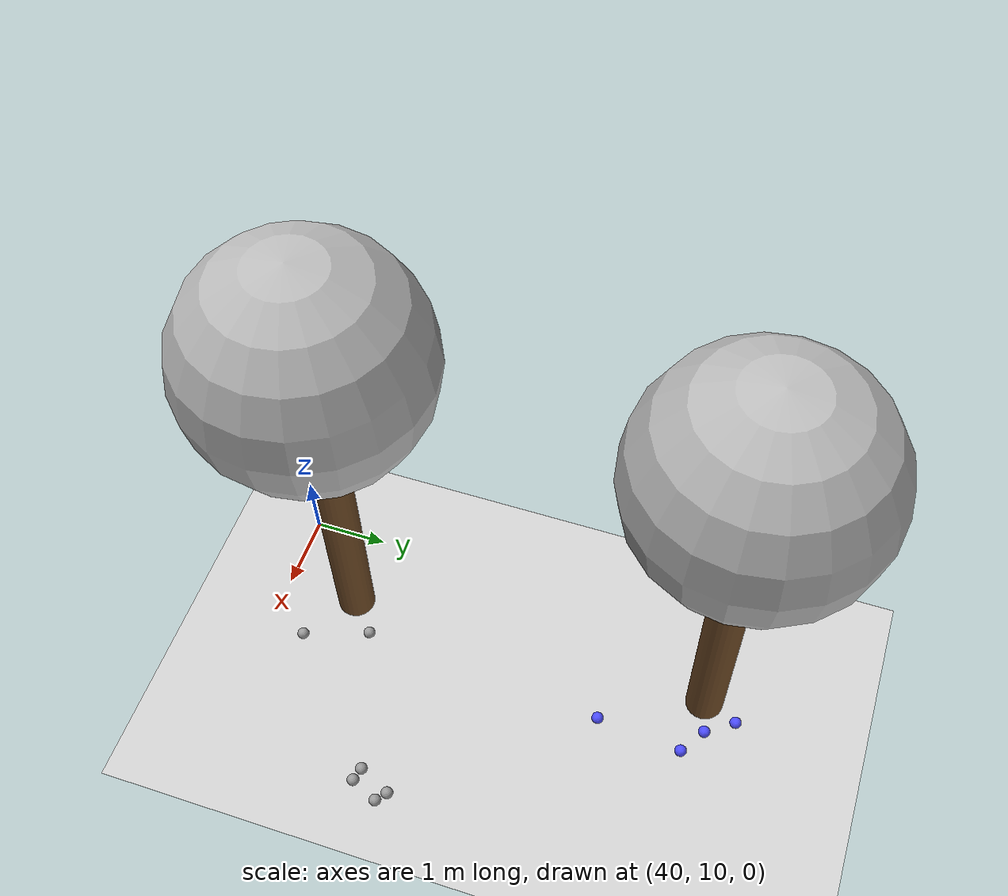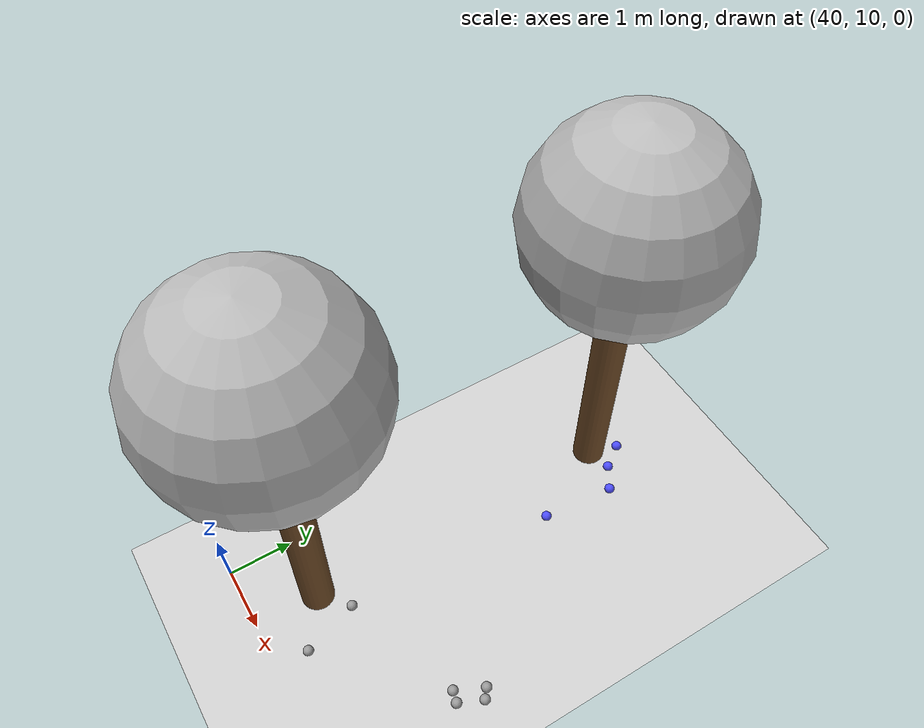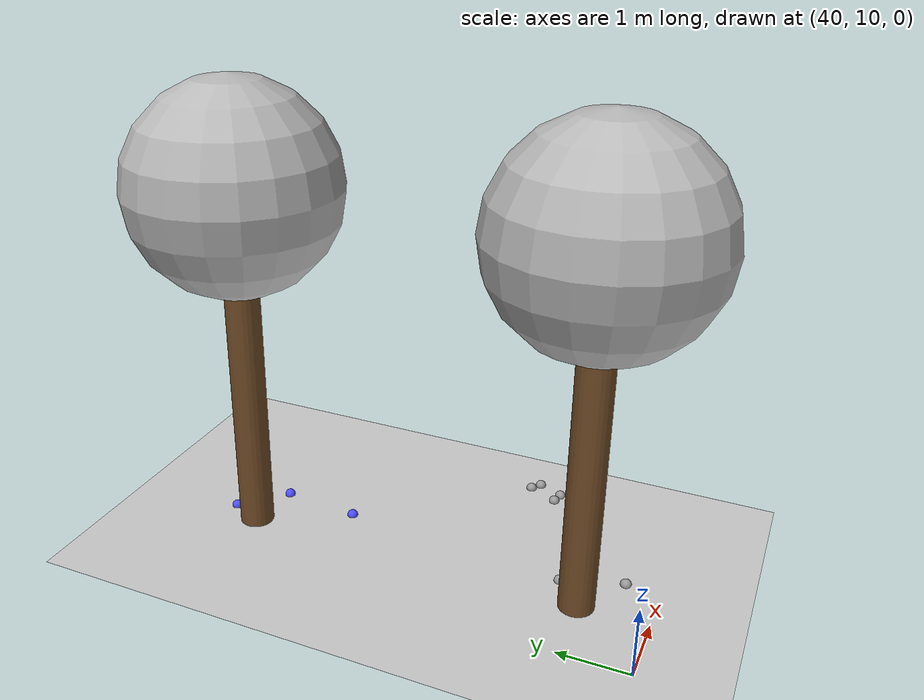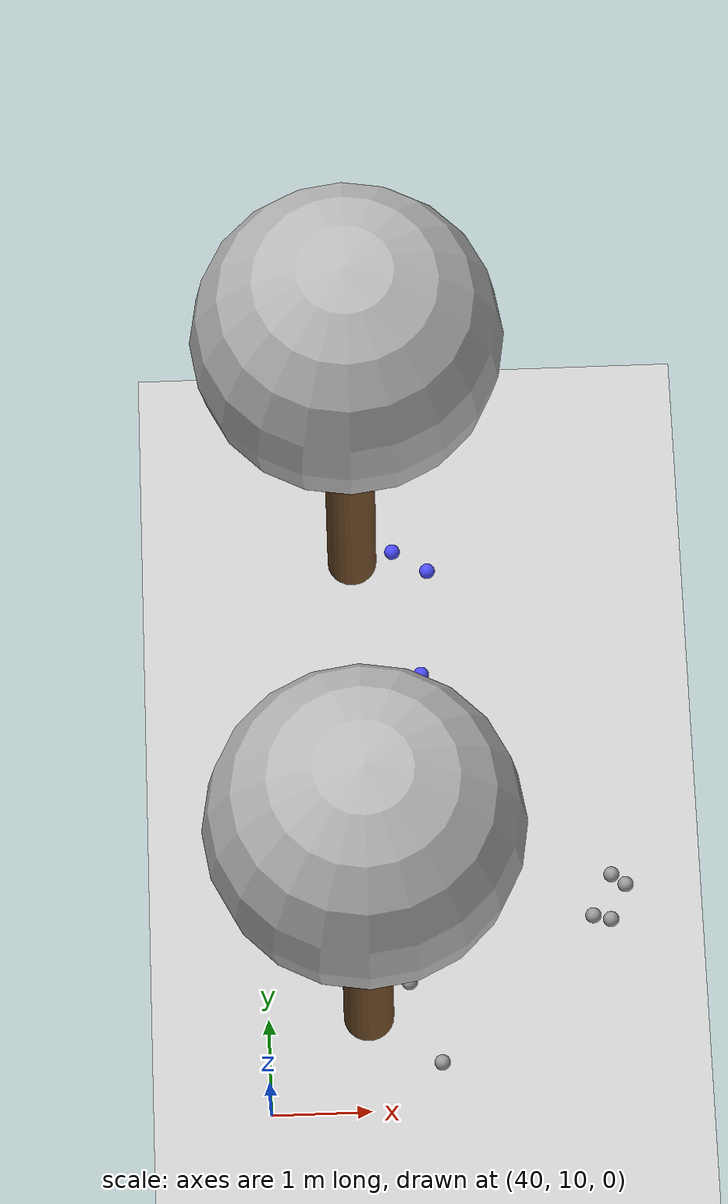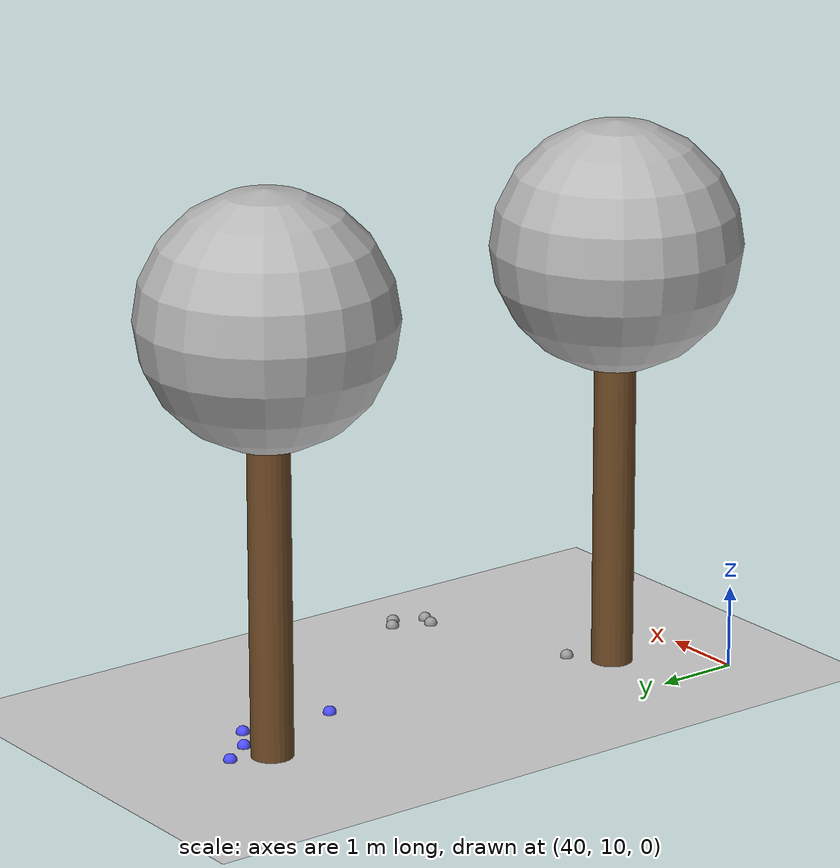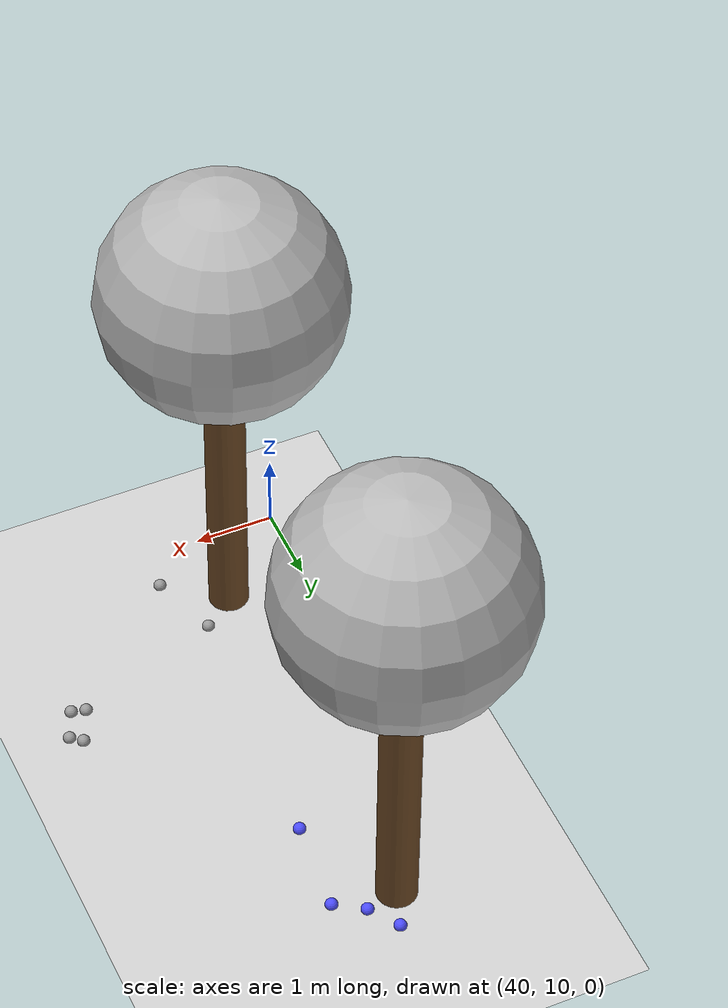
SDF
<sdf version="1.7">
 <world name="default">
  <model name="ground_plane">
   <static>1</static>
   <link name="link">
    <collision name="collision">
     <geometry><plane><normal>0 0 1</normal><size>100 100</size></plane></geometry>
     <surface>
      <contact><collide_bitmask>65535</collide_bitmask></contact>
      <friction><ode><mu>100</mu><mu2>50</mu2></ode></friction>
     </surface>
    </collision>
    <visual name="visual">
     <cast_shadows>0</cast_shadows>
     <geometry><plane><normal>0 0 1</normal><size>100 100</size></plane></geometry>
     <material>
      <script><uri>file://media/materials/scripts/gazebo.material</uri><name>Gazebo/Grey</name></script>
     </material>
    </visual>
   </link>
  </model>
  <model name="tree_simple_59">
   <static>1</static>
   <link name="link">
    <pose>0 0 0.1 0 -0 0</pose>
    <inertial>
     <mass>666</mass>
     <inertia>
      <ixx>0.0861167</ixx>
      <ixy>0</ixy>
      <ixz>0</ixz>
      <iyy>0.0861167</iyy>
      <iyz>0</iyz>
      <izz>0.0861167</izz>
     </inertia>
    </inertial>
    <collision name="collision_trunk">
     <pose>0 0 2 0 -0 0</pose>
     <geometry><cylinder><radius>0.25</radius><length>4</length></cylinder></geometry>
     <surface>
      <contact>
       <poissons_ratio>0.347</poissons_ratio>
       <elastic_modulus>8.8e+09</elastic_modulus>
       <ode><kp>100000</kp><kd>100</kd><max_vel>100</max_vel><min_depth>0.001</min_depth></ode>
      </contact>
      <friction>
       <torsional>
        <coefficient>1</coefficient>
        <use_patch_radius>0</use_patch_radius>
        <surface_radius>0.01</surface_radius>
       </torsional>
      </friction>
     </surface>
    </collision>
    <collision name="collision_treetop">
     <pose>0 0 5.2 0 -0 0</pose>
     <geometry><sphere><radius>1.5</radius></sphere></geometry>
     <surface>
      <contact>
       <poissons_ratio>0.347</poissons_ratio>
       <elastic_modulus>8.8e+09</elastic_modulus>
       <ode><kp>100000</kp><kd>100</kd><max_vel>100</max_vel><min_depth>0.001</min_depth></ode>
      </contact>
      <friction>
       <torsional>
        <coefficient>1</coefficient>
        <use_patch_radius>0</use_patch_radius>
        <surface_radius>0.01</surface_radius>
       </torsional>
      </friction>
     </surface>
    </collision>
    <visual name="trunk">
     <pose>0 0 2 0 -0 0</pose>
     <geometry><cylinder><radius>0.25</radius><length>4</length></cylinder></geometry>
     <material>
      <script>
       <uri>model://tree_simple/scripts</uri>
       <uri>model://tree_simple/materials/textures</uri>
       <name>TreeSimple/Trunk</name>
      </script>
     </material>
    </visual>
    <visual name="treetop">
     <pose>0 0 5.2 0 -0 0</pose>
     <geometry><sphere><radius>1.5</radius></sphere></geometry>
     <material>
      <script>
       <uri>model://tree_simple/scripts</uri>
       <uri>model://tree_simple/materials/textures</uri>
       <name>TreeSimple/Treetop</name>
      </script>
     </material>
    </visual>
   </link>
   <pose>41 16 -0.1 0 -0 0</pose>
  </model>
  <model name="tree_simple_69">
   <static>1</static>
   <link name="link">
    <pose>0 0 0.1 0 -0 0</pose>
    <inertial>
     <mass>666</mass>
     <inertia>
      <ixx>0.0861167</ixx>
      <ixy>0</ixy>
      <ixz>0</ixz>
      <iyy>0.0861167</iyy>
      <iyz>0</iyz>
      <izz>0.0861167</izz>
     </inertia>
    </inertial>
    <collision name="collision_trunk">
     <pose>0 0 2 0 -0 0</pose>
     <geometry><cylinder><radius>0.25</radius><length>4</length></cylinder></geometry>
     <surface>
      <contact>
       <poissons_ratio>0.347</poissons_ratio>
       <elastic_modulus>8.8e+09</elastic_modulus>
       <ode><kp>100000</kp><kd>100</kd><max_vel>100</max_vel><min_depth>0.001</min_depth></ode>
      </contact>
      <friction>
       <torsional>
        <coefficient>1</coefficient>
        <use_patch_radius>0</use_patch_radius>
        <surface_radius>0.01</surface_radius>
       </torsional>
      </friction>
     </surface>
    </collision>
    <collision name="collision_treetop">
     <pose>0 0 5.2 0 -0 0</pose>
     <geometry><sphere><radius>1.5</radius></sphere></geometry>
     <surface>
      <contact>
       <poissons_ratio>0.347</poissons_ratio>
       <elastic_modulus>8.8e+09</elastic_modulus>
       <ode><kp>100000</kp><kd>100</kd><max_vel>100</max_vel><min_depth>0.001</min_depth></ode>
      </contact>
      <friction>
       <torsional>
        <coefficient>1</coefficient>
        <use_patch_radius>0</use_patch_radius>
        <surface_radius>0.01</surface_radius>
       </torsional>
      </friction>
     </surface>
    </collision>
    <visual name="trunk">
     <pose>0 0 2 0 -0 0</pose>
     <geometry><cylinder><radius>0.25</radius><length>4</length></cylinder></geometry>
     <material>
      <script>
       <uri>model://tree_simple/scripts</uri>
       <uri>model://tree_simple/materials/textures</uri>
       <name>TreeSimple/Trunk</name>
      </script>
     </material>
    </visual>
    <visual name="treetop">
     <pose>0 0 5.2 0 -0 0</pose>
     <geometry><sphere><radius>1.5</radius></sphere></geometry>
     <material>
      <script>
       <uri>model://tree_simple/scripts</uri>
       <uri>model://tree_simple/materials/textures</uri>
       <name>TreeSimple/Treetop</name>
      </script>
     </material>
    </visual>
   </link>
   <pose>41 11 -0.1 0 -0 0</pose>
  </model>
  <model name="seed_blue_126">
   <link name="link">
    <inertial>
     <mass>1</mass>
     <inertia><ixx>0.1</ixx><ixy>0</ixy><ixz>0</ixz><iyy>0.1</iyy><iyz>0</iyz><izz>0.1</izz></inertia>
    </inertial>
    <visual name="visual">
     <geometry><sphere><radius>0.08</radius></sphere></geometry>
     <material>
      <script><name>Gazebo/Grey</name><uri>file://media/materials/scripts/gazebo.material</uri></script>
      <shader type="pixel"><normal_map>__default__</normal_map></shader>
      <ambient>0.3 0.3 1 1</ambient>
      <diffuse>0.7 0.7 0.7 1</diffuse>
      <specular>0.01 0.01 0.01 1</specular>
      <emissive>0 0 0 1</emissive>
     </material>
    </visual>
    <collision name="collision">
     <geometry><sphere><radius>0.0005</radius></sphere></geometry>
     <surface>
      <friction>
       <ode><mu>1</mu><mu2>1</mu2><fdir1>0 0 0</fdir1><slip1>0</slip1><slip2>0</slip2></ode>
       <torsional>
        <coefficient>1</coefficient>
        <patch_radius>0</patch_radius>
        <surface_radius>0</surface_radius>
        <use_patch_radius>1</use_patch_radius>
        <ode><slip>0</slip></ode>
       </torsional>
      </friction>
      <bounce><restitution_coefficient>0</restitution_coefficient><threshold>1e+06</threshold></bounce>
      <contact>
       <collide_without_contact>0</collide_without_contact>
       <collide_without_contact_bitmask>1</collide_without_contact_bitmask>
       <collide_bitmask>1</collide_bitmask>
       <ode>
        <soft_cfm>0</soft_cfm>
        <soft_erp>0.2</soft_erp>
        <kp>1e+13</kp>
        <kd>1</kd>
        <max_vel>0.01</max_vel>
        <min_depth>0</min_depth>
       </ode>
       <bullet>
        <split_impulse>1</split_impulse>
        <split_impulse_penetration_threshold>-0.01</split_impulse_penetration_threshold>
        <soft_cfm>0</soft_cfm>
        <soft_erp>0.2</soft_erp>
        <kp>1e+13</kp>
        <kd>1</kd>
       </bullet>
      </contact>
     </surface>
    </collision>
   </link>
   <static>0</static>
   <pose>41.4197 16.1052 0.0005 0 -0 0</pose>
  </model>
  <model name="seed_blue_128">
   <link name="link">
    <inertial>
     <mass>1</mass>
     <inertia><ixx>0.1</ixx><ixy>0</ixy><ixz>0</ixz><iyy>0.1</iyy><iyz>0</iyz><izz>0.1</izz></inertia>
    </inertial>
    <visual name="visual">
     <geometry><sphere><radius>0.08</radius></sphere></geometry>
     <material>
      <script><name>Gazebo/Grey</name><uri>file://media/materials/scripts/gazebo.material</uri></script>
      <shader type="pixel"><normal_map>__default__</normal_map></shader>
      <ambient>0.3 0.3 1 1</ambient>
      <diffuse>0.7 0.7 0.7 1</diffuse>
      <specular>0.01 0.01 0.01 1</specular>
      <emissive>0 0 0 1</emissive>
     </material>
    </visual>
    <collision name="collision">
     <geometry><sphere><radius>0.0005</radius></sphere></geometry>
     <surface>
      <friction>
       <ode><mu>1</mu><mu2>1</mu2><fdir1>0 0 0</fdir1><slip1>0</slip1><slip2>0</slip2></ode>
       <torsional>
        <coefficient>1</coefficient>
        <patch_radius>0</patch_radius>
        <surface_radius>0</surface_radius>
        <use_patch_radius>1</use_patch_radius>
        <ode><slip>0</slip></ode>
       </torsional>
      </friction>
      <bounce><restitution_coefficient>0</restitution_coefficient><threshold>1e+06</threshold></bounce>
      <contact>
       <collide_without_contact>0</collide_without_contact>
       <collide_without_contact_bitmask>1</collide_without_contact_bitmask>
       <collide_bitmask>1</collide_bitmask>
       <ode>
        <soft_cfm>0</soft_cfm>
        <soft_erp>0.2</soft_erp>
        <kp>1e+13</kp>
        <kd>1</kd>
        <max_vel>0.01</max_vel>
        <min_depth>0</min_depth>
       </ode>
       <bullet>
        <split_impulse>1</split_impulse>
        <split_impulse_penetration_threshold>-0.01</split_impulse_penetration_threshold>
        <soft_cfm>0</soft_cfm>
        <soft_erp>0.2</soft_erp>
        <kp>1e+13</kp>
        <kd>1</kd>
       </bullet>
      </contact>
     </surface>
    </collision>
   </link>
   <static>0</static>
   <pose>41.7745 15.8744 0.0005 0 -0 0</pose>
  </model>
  <model name="seed_blue_129">
   <link name="link">
    <inertial>
     <mass>1</mass>
     <inertia><ixx>0.1</ixx><ixy>0</ixy><ixz>0</ixz><iyy>0.1</iyy><iyz>0</iyz><izz>0.1</izz></inertia>
    </inertial>
    <visual name="visual">
     <geometry><sphere><radius>0.08</radius></sphere></geometry>
     <material>
      <script><name>Gazebo/Grey</name><uri>file://media/materials/scripts/gazebo.material</uri></script>
      <shader type="pixel"><normal_map>__default__</normal_map></shader>
      <ambient>0.3 0.3 1 1</ambient>
      <diffuse>0.7 0.7 0.7 1</diffuse>
      <specular>0.01 0.01 0.01 1</specular>
      <emissive>0 0 0 1</emissive>
     </material>
    </visual>
    <collision name="collision">
     <geometry><sphere><radius>0.0005</radius></sphere></geometry>
     <surface>
      <friction>
       <ode><mu>1</mu><mu2>1</mu2><fdir1>0 0 0</fdir1><slip1>0</slip1><slip2>0</slip2></ode>
       <torsional>
        <coefficient>1</coefficient>
        <patch_radius>0</patch_radius>
        <surface_radius>0</surface_radius>
        <use_patch_radius>1</use_patch_radius>
        <ode><slip>0</slip></ode>
       </torsional>
      </friction>
      <bounce><restitution_coefficient>0</restitution_coefficient><threshold>1e+06</threshold></bounce>
      <contact>
       <collide_without_contact>0</collide_without_contact>
       <collide_without_contact_bitmask>1</collide_without_contact_bitmask>
       <collide_bitmask>1</collide_bitmask>
       <ode>
        <soft_cfm>0</soft_cfm>
        <soft_erp>0.2</soft_erp>
        <kp>1e+13</kp>
        <kd>1</kd>
        <max_vel>0.01</max_vel>
        <min_depth>0</min_depth>
       </ode>
       <bullet>
        <split_impulse>1</split_impulse>
        <split_impulse_penetration_threshold>-0.01</split_impulse_penetration_threshold>
        <soft_cfm>0</soft_cfm>
        <soft_erp>0.2</soft_erp>
        <kp>1e+13</kp>
        <kd>1</kd>
       </bullet>
      </contact>
     </surface>
    </collision>
   </link>
   <static>0</static>
   <pose>41.6672 14.7111 0.0005 0 -0 0</pose>
  </model>
  <model name="seed_blue_132">
   <link name="link">
    <inertial>
     <mass>1</mass>
     <inertia><ixx>0.1</ixx><ixy>0</ixy><ixz>0</ixz><iyy>0.1</iyy><iyz>0</iyz><izz>0.1</izz></inertia>
    </inertial>
    <visual name="visual">
     <geometry><sphere><radius>0.08</radius></sphere></geometry>
     <material>
      <script><name>Gazebo/Grey</name><uri>file://media/materials/scripts/gazebo.material</uri></script>
      <shader type="pixel"><normal_map>__default__</normal_map></shader>
      <ambient>0.3 0.3 1 1</ambient>
      <diffuse>0.7 0.7 0.7 1</diffuse>
      <specular>0.01 0.01 0.01 1</specular>
      <emissive>0 0 0 1</emissive>
     </material>
    </visual>
    <collision name="collision">
     <geometry><sphere><radius>0.0005</radius></sphere></geometry>
     <surface>
      <friction>
       <ode><mu>1</mu><mu2>1</mu2><fdir1>0 0 0</fdir1><slip1>0</slip1><slip2>0</slip2></ode>
       <torsional>
        <coefficient>1</coefficient>
        <patch_radius>0</patch_radius>
        <surface_radius>0</surface_radius>
        <use_patch_radius>1</use_patch_radius>
        <ode><slip>0</slip></ode>
       </torsional>
      </friction>
      <bounce><restitution_coefficient>0</restitution_coefficient><threshold>1e+06</threshold></bounce>
      <contact>
       <collide_without_contact>0</collide_without_contact>
       <collide_without_contact_bitmask>1</collide_without_contact_bitmask>
       <collide_bitmask>1</collide_bitmask>
       <ode>
        <soft_cfm>0</soft_cfm>
        <soft_erp>0.2</soft_erp>
        <kp>1e+13</kp>
        <kd>1</kd>
        <max_vel>0.01</max_vel>
        <min_depth>0</min_depth>
       </ode>
       <bullet>
        <split_impulse>1</split_impulse>
        <split_impulse_penetration_threshold>-0.01</split_impulse_penetration_threshold>
        <soft_cfm>0</soft_cfm>
        <soft_erp>0.2</soft_erp>
        <kp>1e+13</kp>
        <kd>1</kd>
       </bullet>
      </contact>
     </surface>
    </collision>
   </link>
   <static>0</static>
   <pose>41.1668 16.469 0.0005 0 -0 0</pose>
  </model>
  <model name="seed_black_47">
   <link name="link">
    <inertial>
     <mass>1</mass>
     <inertia><ixx>0.1</ixx><ixy>0</ixy><ixz>0</ixz><iyy>0.1</iyy><iyz>0</iyz><izz>0.1</izz></inertia>
    </inertial>
    <visual name="visual">
     <geometry><sphere><radius>0.08</radius></sphere></geometry>
     <material>
      <script><name>Gazebo/Grey</name><uri>file://media/materials/scripts/gazebo.material</uri></script>
      <shader type="pixel"><normal_map>__default__</normal_map></shader>
      <ambient>0 0 0 1</ambient>
      <diffuse>0.7 0.7 0.7 1</diffuse>
      <specular>0.01 0.01 0.01 1</specular>
      <emissive>0 0 0 1</emissive>
     </material>
    </visual>
    <collision name="collision">
     <geometry><sphere><radius>0.0005</radius></sphere></geometry>
     <surface>
      <friction>
       <ode><mu>1</mu><mu2>1</mu2><fdir1>0 0 0</fdir1><slip1>0</slip1><slip2>0</slip2></ode>
       <torsional>
        <coefficient>1</coefficient>
        <patch_radius>0</patch_radius>
        <surface_radius>0</surface_radius>
        <use_patch_radius>1</use_patch_radius>
        <ode><slip>0</slip></ode>
       </torsional>
      </friction>
      <bounce><restitution_coefficient>0</restitution_coefficient><threshold>1e+06</threshold></bounce>
      <contact>
       <collide_without_contact>0</collide_without_contact>
       <collide_without_contact_bitmask>1</collide_without_contact_bitmask>
       <collide_bitmask>1</collide_bitmask>
       <ode>
        <soft_cfm>0</soft_cfm>
        <soft_erp>0.2</soft_erp>
        <kp>1e+13</kp>
        <kd>1</kd>
        <max_vel>0.01</max_vel>
        <min_depth>0</min_depth>
       </ode>
       <bullet>
        <split_impulse>1</split_impulse>
        <split_impulse_penetration_threshold>-0.01</split_impulse_penetration_threshold>
        <soft_cfm>0</soft_cfm>
        <soft_erp>0.2</soft_erp>
        <kp>1e+13</kp>
        <kd>1</kd>
       </bullet>
      </contact>
     </surface>
    </collision>
   </link>
   <static>0</static>
   <pose>43.4812 11.9547 0.0005 0 -0 0</pose>
  </model>
  <model name="seed_black_48">
   <link name="link">
    <inertial>
     <mass>1</mass>
     <inertia><ixx>0.1</ixx><ixy>0</ixy><ixz>0</ixz><iyy>0.1</iyy><iyz>0</iyz><izz>0.1</izz></inertia>
    </inertial>
    <visual name="visual">
     <geometry><sphere><radius>0.08</radius></sphere></geometry>
     <material>
      <script><name>Gazebo/Grey</name><uri>file://media/materials/scripts/gazebo.material</uri></script>
      <shader type="pixel"><normal_map>__default__</normal_map></shader>
      <ambient>0 0 0 1</ambient>
      <diffuse>0.7 0.7 0.7 1</diffuse>
      <specular>0.01 0.01 0.01 1</specular>
      <emissive>0 0 0 1</emissive>
     </material>
    </visual>
    <collision name="collision">
     <geometry><sphere><radius>0.0005</radius></sphere></geometry>
     <surface>
      <friction>
       <ode><mu>1</mu><mu2>1</mu2><fdir1>0 0 0</fdir1><slip1>0</slip1><slip2>0</slip2></ode>
       <torsional>
        <coefficient>1</coefficient>
        <patch_radius>0</patch_radius>
        <surface_radius>0</surface_radius>
        <use_patch_radius>1</use_patch_radius>
        <ode><slip>0</slip></ode>
       </torsional>
      </friction>
      <bounce><restitution_coefficient>0</restitution_coefficient><threshold>1e+06</threshold></bounce>
      <contact>
       <collide_without_contact>0</collide_without_contact>
       <collide_without_contact_bitmask>1</collide_without_contact_bitmask>
       <collide_bitmask>1</collide_bitmask>
       <ode>
        <soft_cfm>0</soft_cfm>
        <soft_erp>0.2</soft_erp>
        <kp>1e+13</kp>
        <kd>1</kd>
        <max_vel>0.01</max_vel>
        <min_depth>0</min_depth>
       </ode>
       <bullet>
        <split_impulse>1</split_impulse>
        <split_impulse_penetration_threshold>-0.01</split_impulse_penetration_threshold>
        <soft_cfm>0</soft_cfm>
        <soft_erp>0.2</soft_erp>
        <kp>1e+13</kp>
        <kd>1</kd>
       </bullet>
      </contact>
     </surface>
    </collision>
   </link>
   <static>0</static>
   <pose>43.5086 12.4365 0.0005 0 -0 0</pose>
  </model>
  <model name="seed_black_49">
   <link name="link">
    <inertial>
     <mass>1</mass>
     <inertia><ixx>0.1</ixx><ixy>0</ixy><ixz>0</ixz><iyy>0.1</iyy><iyz>0</iyz><izz>0.1</izz></inertia>
    </inertial>
    <visual name="visual">
     <geometry><sphere><radius>0.08</radius></sphere></geometry>
     <material>
      <script><name>Gazebo/Grey</name><uri>file://media/materials/scripts/gazebo.material</uri></script>
      <shader type="pixel"><normal_map>__default__</normal_map></shader>
      <ambient>0 0 0 1</ambient>
      <diffuse>0.7 0.7 0.7 1</diffuse>
      <specular>0.01 0.01 0.01 1</specular>
      <emissive>0 0 0 1</emissive>
     </material>
    </visual>
    <collision name="collision">
     <geometry><sphere><radius>0.0005</radius></sphere></geometry>
     <surface>
      <friction>
       <ode><mu>1</mu><mu2>1</mu2><fdir1>0 0 0</fdir1><slip1>0</slip1><slip2>0</slip2></ode>
       <torsional>
        <coefficient>1</coefficient>
        <patch_radius>0</patch_radius>
        <surface_radius>0</surface_radius>
        <use_patch_radius>1</use_patch_radius>
        <ode><slip>0</slip></ode>
       </torsional>
      </friction>
      <bounce><restitution_coefficient>0</restitution_coefficient><threshold>1e+06</threshold></bounce>
      <contact>
       <collide_without_contact>0</collide_without_contact>
       <collide_without_contact_bitmask>1</collide_without_contact_bitmask>
       <collide_bitmask>1</collide_bitmask>
       <ode>
        <soft_cfm>0</soft_cfm>
        <soft_erp>0.2</soft_erp>
        <kp>1e+13</kp>
        <kd>1</kd>
        <max_vel>0.01</max_vel>
        <min_depth>0</min_depth>
       </ode>
       <bullet>
        <split_impulse>1</split_impulse>
        <split_impulse_penetration_threshold>-0.01</split_impulse_penetration_threshold>
        <soft_cfm>0</soft_cfm>
        <soft_erp>0.2</soft_erp>
        <kp>1e+13</kp>
        <kd>1</kd>
       </bullet>
      </contact>
     </surface>
    </collision>
   </link>
   <static>0</static>
   <pose>43.6465 12.3257 0.0005 0 -0 0</pose>
  </model>
  <model name="seed_black_50">
   <link name="link">
    <inertial>
     <mass>1</mass>
     <inertia><ixx>0.1</ixx><ixy>0</ixy><ixz>0</ixz><iyy>0.1</iyy><iyz>0</iyz><izz>0.1</izz></inertia>
    </inertial>
    <visual name="visual">
     <geometry><sphere><radius>0.08</radius></sphere></geometry>
     <material>
      <script><name>Gazebo/Grey</name><uri>file://media/materials/scripts/gazebo.material</uri></script>
      <shader type="pixel"><normal_map>__default__</normal_map></shader>
      <ambient>0 0 0 1</ambient>
      <diffuse>0.7 0.7 0.7 1</diffuse>
      <specular>0.01 0.01 0.01 1</specular>
      <emissive>0 0 0 1</emissive>
     </material>
    </visual>
    <collision name="collision">
     <geometry><sphere><radius>0.0005</radius></sphere></geometry>
     <surface>
      <friction>
       <ode><mu>1</mu><mu2>1</mu2><fdir1>0 0 0</fdir1><slip1>0</slip1><slip2>0</slip2></ode>
       <torsional>
        <coefficient>1</coefficient>
        <patch_radius>0</patch_radius>
        <surface_radius>0</surface_radius>
        <use_patch_radius>1</use_patch_radius>
        <ode><slip>0</slip></ode>
       </torsional>
      </friction>
      <bounce><restitution_coefficient>0</restitution_coefficient><threshold>1e+06</threshold></bounce>
      <contact>
       <collide_without_contact>0</collide_without_contact>
       <collide_without_contact_bitmask>1</collide_without_contact_bitmask>
       <collide_bitmask>1</collide_bitmask>
       <ode>
        <soft_cfm>0</soft_cfm>
        <soft_erp>0.2</soft_erp>
        <kp>1e+13</kp>
        <kd>1</kd>
        <max_vel>0.01</max_vel>
        <min_depth>0</min_depth>
       </ode>
       <bullet>
        <split_impulse>1</split_impulse>
        <split_impulse_penetration_threshold>-0.01</split_impulse_penetration_threshold>
        <soft_cfm>0</soft_cfm>
        <soft_erp>0.2</soft_erp>
        <kp>1e+13</kp>
        <kd>1</kd>
       </bullet>
      </contact>
     </surface>
    </collision>
   </link>
   <static>0</static>
   <pose>43.3039 12.0005 0.0005 0 -0 0</pose>
  </model>
  <model name="seed_black_52">
   <link name="link">
    <inertial>
     <mass>1</mass>
     <inertia><ixx>0.1</ixx><ixy>0</ixy><ixz>0</ixz><iyy>0.1</iyy><iyz>0</iyz><izz>0.1</izz></inertia>
    </inertial>
    <visual name="visual">
     <geometry><sphere><radius>0.08</radius></sphere></geometry>
     <material>
      <script><name>Gazebo/Grey</name><uri>file://media/materials/scripts/gazebo.material</uri></script>
      <shader type="pixel"><normal_map>__default__</normal_map></shader>
      <ambient>0 0 0 1</ambient>
      <diffuse>0.7 0.7 0.7 1</diffuse>
      <specular>0.01 0.01 0.01 1</specular>
      <emissive>0 0 0 1</emissive>
     </material>
    </visual>
    <collision name="collision">
     <geometry><sphere><radius>0.0005</radius></sphere></geometry>
     <surface>
      <friction>
       <ode><mu>1</mu><mu2>1</mu2><fdir1>0 0 0</fdir1><slip1>0</slip1><slip2>0</slip2></ode>
       <torsional>
        <coefficient>1</coefficient>
        <patch_radius>0</patch_radius>
        <surface_radius>0</surface_radius>
        <use_patch_radius>1</use_patch_radius>
        <ode><slip>0</slip></ode>
       </torsional>
      </friction>
      <bounce><restitution_coefficient>0</restitution_coefficient><threshold>1e+06</threshold></bounce>
      <contact>
       <collide_without_contact>0</collide_without_contact>
       <collide_without_contact_bitmask>1</collide_without_contact_bitmask>
       <collide_bitmask>1</collide_bitmask>
       <ode>
        <soft_cfm>0</soft_cfm>
        <soft_erp>0.2</soft_erp>
        <kp>1e+13</kp>
        <kd>1</kd>
        <max_vel>0.01</max_vel>
        <min_depth>0</min_depth>
       </ode>
       <bullet>
        <split_impulse>1</split_impulse>
        <split_impulse_penetration_threshold>-0.01</split_impulse_penetration_threshold>
        <soft_cfm>0</soft_cfm>
        <soft_erp>0.2</soft_erp>
        <kp>1e+13</kp>
        <kd>1</kd>
       </bullet>
      </contact>
     </surface>
    </collision>
   </link>
   <static>0</static>
   <pose>41.4235 11.3559 0.0005 0 -0 0</pose>
  </model>
  <model name="seed_black_55">
   <link name="link">
    <inertial>
     <mass>1</mass>
     <inertia><ixx>0.1</ixx><ixy>0</ixy><ixz>0</ixz><iyy>0.1</iyy><iyz>0</iyz><izz>0.1</izz></inertia>
    </inertial>
    <visual name="visual">
     <geometry><sphere><radius>0.08</radius></sphere></geometry>
     <material>
      <script><name>Gazebo/Grey</name><uri>file://media/materials/scripts/gazebo.material</uri></script>
      <shader type="pixel"><normal_map>__default__</normal_map></shader>
      <ambient>0 0 0 1</ambient>
      <diffuse>0.7 0.7 0.7 1</diffuse>
      <specular>0.01 0.01 0.01 1</specular>
      <emissive>0 0 0 1</emissive>
     </material>
    </visual>
    <collision name="collision">
     <geometry><sphere><radius>0.0005</radius></sphere></geometry>
     <surface>
      <friction>
       <ode><mu>1</mu><mu2>1</mu2><fdir1>0 0 0</fdir1><slip1>0</slip1><slip2>0</slip2></ode>
       <torsional>
        <coefficient>1</coefficient>
        <patch_radius>0</patch_radius>
        <surface_radius>0</surface_radius>
        <use_patch_radius>1</use_patch_radius>
        <ode><slip>0</slip></ode>
       </torsional>
      </friction>
      <bounce><restitution_coefficient>0</restitution_coefficient><threshold>1e+06</threshold></bounce>
      <contact>
       <collide_without_contact>0</collide_without_contact>
       <collide_without_contact_bitmask>1</collide_without_contact_bitmask>
       <collide_bitmask>1</collide_bitmask>
       <ode>
        <soft_cfm>0</soft_cfm>
        <soft_erp>0.2</soft_erp>
        <kp>1e+13</kp>
        <kd>1</kd>
        <max_vel>0.01</max_vel>
        <min_depth>0</min_depth>
       </ode>
       <bullet>
        <split_impulse>1</split_impulse>
        <split_impulse_penetration_threshold>-0.01</split_impulse_penetration_threshold>
        <soft_cfm>0</soft_cfm>
        <soft_erp>0.2</soft_erp>
        <kp>1e+13</kp>
        <kd>1</kd>
       </bullet>
      </contact>
     </surface>
    </collision>
   </link>
   <static>0</static>
   <pose>41.7181 10.4926 0.0005 0 -0 0</pose>
  </model>
 </world>
</sdf>
